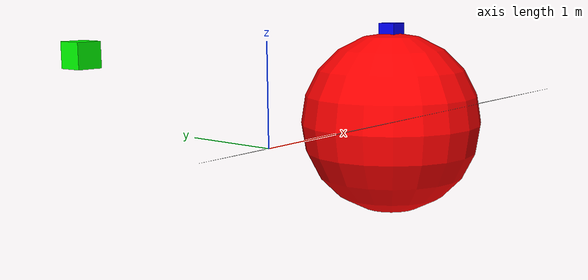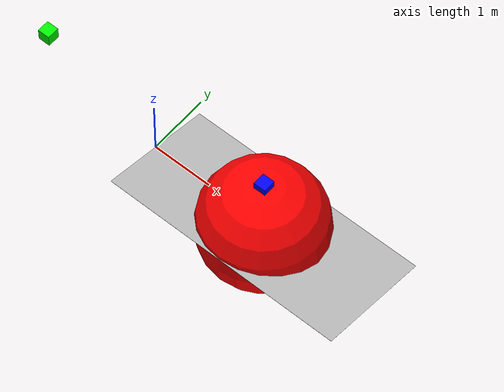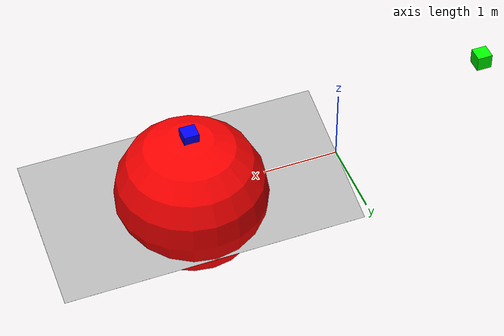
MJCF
<mujoco>
  <option gravity="0 0 -9.81" />
  <worldbody>
    <body name="object_1" pos="-2 0 1">
      <geom type="box" size="0.1 0.1 0.1" density="1" rgba="0 1 0 1" />
      <joint type="free" name="object_1_joint" />
    </body>
    <body name="object_4" pos="2 0 0">
      <geom type="plane" size="2 1 0.1" quat="0.13 0.99 0 0" rgba="0.7 0.7 0.7 1" />
    </body>
    <body name="object_2" pos="2 0 1">
      <geom type="box" size="0.1 0.1 0.1" density="1" rgba="0 0 1 1" />
      <joint type="free" name="object_2_joint" />
    </body>
  <body name="ramp_1" pos="2.0 0.0 0.0"><geom type="sphere" size="1.0" rgba="1 0 0 1" /></body></worldbody>
</mujoco>
